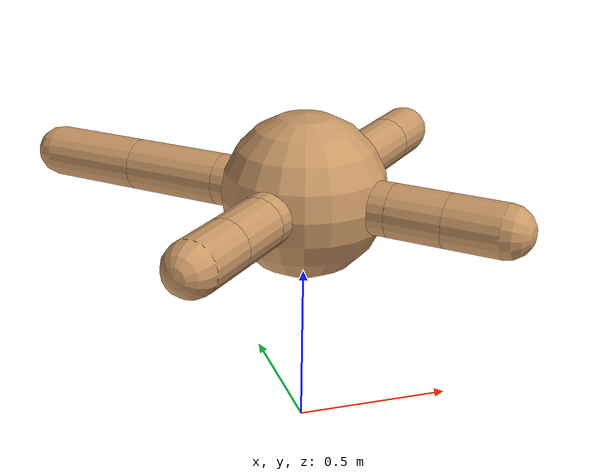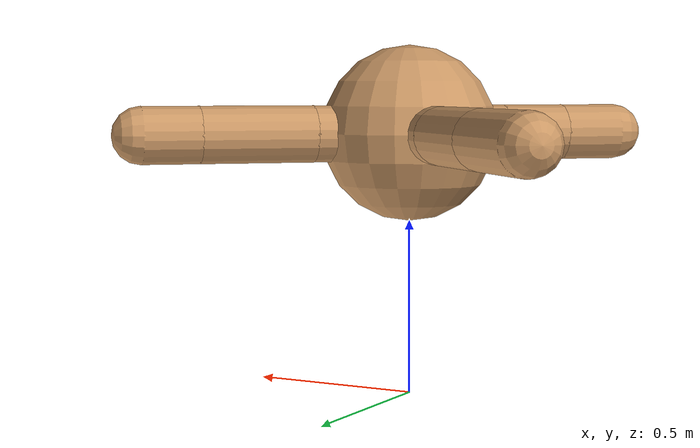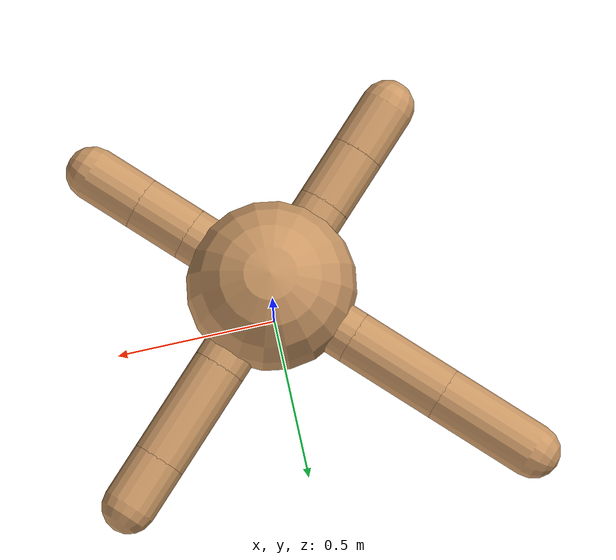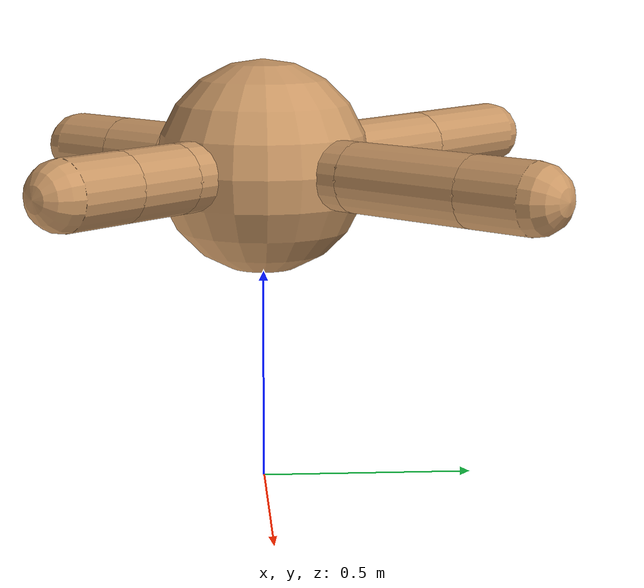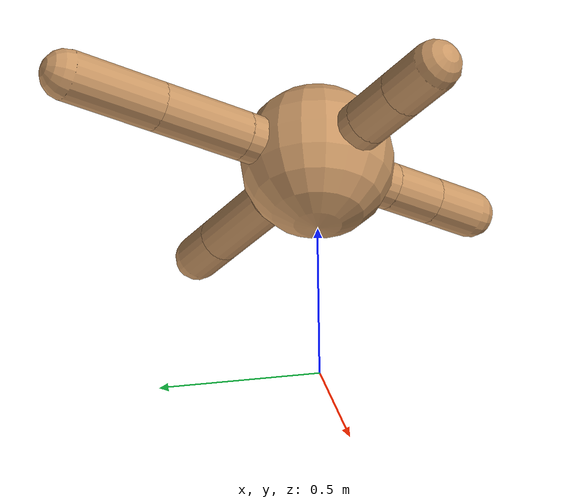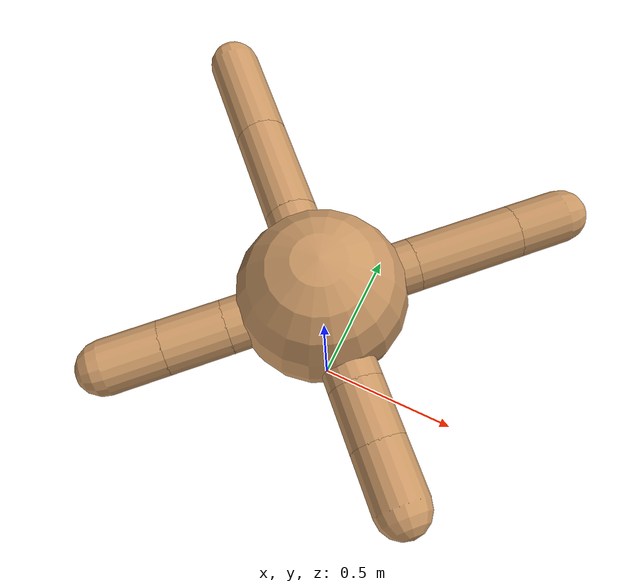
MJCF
<?xml version="1.0" ?>
<mujoco>
    <default>
        <joint armature="1" damping="1" limited="true"/>
        <geom condim="3" conaffinity="0" density="5.0" friction="1 0.5 0.5" margin="0.01" rgba="0.8 0.6 0.4 1"/>
    </default>
    <worldbody>
        <body name="Base" pos="0.0 0.0 0.75">
            <joint type="free" armature="0" damping="0" limited="false" margin="0.01" pos="0 0 0"/>
            <geom type="sphere" rgba="0.8 0.6 0.4 1" size="0.25"/>
            <camera name="track" mode="trackcom" pos="0 -3 0.3" xyaxes="1 0 0 0 0 1"/>
            <geom name="limb0" type="capsule" fromto="0 0 0 0.2 0.2 0.0" size="0.08"/>
            <body name="rod_0.1" pos="0.31325611619080707 0.31325611619080707 0.0">
                <geom type="capsule" fromto="-0.11325611619080703 -0.11325611619080703 -0.0 0.11325611619080703 0.11325611619080703 0.0" size="0.08" name="geom_0.1"/>
                <site pos="0 0 0" quat="0.9238795325112867 0.0 0.0 0.38268343236508984" name="site_0.1"/>
                <joint type="hinge" pos="-0.11325611619080703 -0.11325611619080703 -0.0" axis="0.5773502691896258 0.5773502691896258 0.5773502691896258" range="-30 30" name="joint_Base=rod_0.1"/>
                <body pos="-0.11325611619080703 -0.11325611619080703 -0.0" name="p0">
                    <site name="p0"/>
                </body>
                <body name="rod_1.2" pos="0.16963219310045333 0.16963219310045333 0.0">
                    <geom type="capsule" fromto="-0.0563760769096463 -0.0563760769096463 -0.0 0.0563760769096463 0.0563760769096463 0.0" size="0.08" name="geom_1.2"/>
                    <site pos="0 0 0" quat="0.9238795325112867 0.0 0.0 0.38268343236508984" name="site_1.2"/>
                    <joint type="hinge" pos="-0.0563760769096463 -0.0563760769096463 -0.0" axis="0.5773502691896258 0.5773502691896258 0.5773502691896258" range="30 70" name="joint_rod_0.1=rod_1.2"/>
                    <body pos="-0.0563760769096463 -0.0563760769096463 -0.0" name="p1">
                        <site name="p1"/>
                    </body>
                </body>
            </body>
            <geom name="limb1" type="capsule" fromto="0 0 0 -0.2 0.2 0.0" size="0.08"/>
            <body name="rod_3.4" pos="-0.3081193420505735 0.3081193420505735 0.0">
                <geom type="capsule" fromto="0.1081193420505735 -0.1081193420505735 -0.0 -0.1081193420505735 0.1081193420505735 0.0" size="0.08" name="geom_3.4"/>
                <site pos="0 0 0" quat="0.38268343236508984 0.0 -0.0 0.9238795325112867" name="site_3.4"/>
                <joint type="hinge" pos="0.1081193420505735 -0.1081193420505735 -0.0" axis="0.5773502691896258 0.5773502691896258 0.5773502691896258" range="-30 30" name="joint_Base=rod_3.4"/>
                <body pos="0.1081193420505735 -0.1081193420505735 -0.0" name="p3">
                    <site name="p3"/>
                </body>
                <body name="rod_4.5" pos="-0.21737076106769423 0.21737076106769423 0.0">
                    <geom type="capsule" fromto="0.10925141901712074 -0.10925141901712074 -0.0 -0.10925141901712074 0.10925141901712074 0.0" size="0.08" name="geom_4.5"/>
                    <site pos="0 0 0" quat="0.38268343236508984 0.0 -0.0 0.9238795325112867" name="site_4.5"/>
                    <joint type="hinge" pos="0.10925141901712074 -0.10925141901712074 -0.0" axis="0.5773502691896258 0.5773502691896258 0.5773502691896258" range="-70 -30" name="joint_rod_3.4=rod_4.5"/>
                    <body pos="0.10925141901712074 -0.10925141901712074 -0.0" name="p4">
                        <site name="p4"/>
                    </body>
                </body>
            </body>
            <geom name="limb2" type="capsule" fromto="0 0 0 -0.2 -0.2 0.0" size="0.08"/>
            <body name="rod_6.7" pos="-0.2639854243353701 -0.2639854243353701 0.0">
                <geom type="capsule" fromto="0.0639854243353701 0.0639854243353701 -0.0 -0.0639854243353701 -0.0639854243353701 0.0" size="0.08" name="geom_6.7"/>
                <site pos="0 0 0" quat="0.38268343236508984 0.0 -0.0 -0.9238795325112867" name="site_6.7"/>
                <joint type="hinge" pos="0.0639854243353701 0.0639854243353701 -0.0" axis="0.5773502691896258 0.5773502691896258 0.5773502691896258" range="-30 30" name="joint_Base=rod_6.7"/>
                <body pos="0.0639854243353701 0.0639854243353701 -0.0" name="p6">
                    <site name="p6"/>
                </body>
                <body name="rod_7.8" pos="-0.12263947505893733 -0.12263947505893733 0.0">
                    <geom type="capsule" fromto="0.05865405072356722 0.05865405072356722 -0.0 -0.05865405072356722 -0.05865405072356722 0.0" size="0.08" name="geom_7.8"/>
                    <site pos="0 0 0" quat="0.38268343236508984 0.0 -0.0 -0.9238795325112867" name="site_7.8"/>
                    <joint type="hinge" pos="0.05865405072356722 0.05865405072356722 -0.0" axis="0.5773502691896258 0.5773502691896258 0.5773502691896258" range="-70 -30" name="joint_rod_6.7=rod_7.8"/>
                    <body pos="0.05865405072356722 0.05865405072356722 -0.0" name="p7">
                        <site name="p7"/>
                    </body>
                </body>
            </body>
            <geom name="limb3" type="capsule" fromto="0 0 0 0.2 -0.2 0.0" size="0.08"/>
            <body name="rod_9.10" pos="0.25947106480666793 -0.25947106480666793 0.0">
                <geom type="capsule" fromto="-0.05947106480666792 0.05947106480666792 -0.0 0.05947106480666792 -0.05947106480666792 0.0" size="0.08" name="geom_9.10"/>
                <site pos="0 0 0" quat="0.9238795325112867 0.0 0.0 -0.3826834323650898" name="site_9.10"/>
                <joint type="hinge" pos="-0.05947106480666792 0.05947106480666792 -0.0" axis="0.5773502691896258 0.5773502691896258 0.5773502691896258" range="-30 30" name="joint_Base=rod_9.10"/>
                <body pos="-0.05947106480666792 0.05947106480666792 -0.0" name="p9">
                    <site name="p9"/>
                </body>
                <body name="rod_10.11" pos="0.11891885576500441 -0.11891885576500441 0.0">
                    <geom type="capsule" fromto="-0.059447790958336494 0.059447790958336494 -0.0 0.059447790958336494 -0.059447790958336494 0.0" size="0.08" name="geom_10.11"/>
                    <site pos="0 0 0" quat="0.9238795325112867 0.0 0.0 -0.38268343236508984" name="site_10.11"/>
                    <joint type="hinge" pos="-0.059447790958336494 0.059447790958336494 -0.0" axis="0.5773502691896258 0.5773502691896258 0.5773502691896258" range="30 70" name="joint_rod_9.10=rod_10.11"/>
                    <body pos="-0.059447790958336494 0.059447790958336494 -0.0" name="p10">
                        <site name="p10"/>
                    </body>
                </body>
            </body>
        </body>
    </worldbody>
    <actuator>
        <motor gear="150" ctrlrange="-1.0 1.0" ctrllimited="true" joint="joint_Base=rod_0.1"/>
        <motor gear="150" ctrlrange="-1.0 1.0" ctrllimited="true" joint="joint_rod_0.1=rod_1.2"/>
        <motor gear="150" ctrlrange="-1.0 1.0" ctrllimited="true" joint="joint_Base=rod_3.4"/>
        <motor gear="150" ctrlrange="-1.0 1.0" ctrllimited="true" joint="joint_rod_3.4=rod_4.5"/>
        <motor gear="150" ctrlrange="-1.0 1.0" ctrllimited="true" joint="joint_Base=rod_6.7"/>
        <motor gear="150" ctrlrange="-1.0 1.0" ctrllimited="true" joint="joint_rod_6.7=rod_7.8"/>
        <motor gear="150" ctrlrange="-1.0 1.0" ctrllimited="true" joint="joint_Base=rod_9.10"/>
        <motor gear="150" ctrlrange="-1.0 1.0" ctrllimited="true" joint="joint_rod_9.10=rod_10.11"/>
    </actuator>
    <sensor>
        <accelerometer site="site_0.1"/>
        <gyro site="site_0.1"/>
        <magnetometer site="site_0.1"/>
        <accelerometer site="site_1.2"/>
        <gyro site="site_1.2"/>
        <magnetometer site="site_1.2"/>
        <accelerometer site="site_3.4"/>
        <gyro site="site_3.4"/>
        <magnetometer site="site_3.4"/>
        <accelerometer site="site_4.5"/>
        <gyro site="site_4.5"/>
        <magnetometer site="site_4.5"/>
        <accelerometer site="site_6.7"/>
        <gyro site="site_6.7"/>
        <magnetometer site="site_6.7"/>
        <accelerometer site="site_7.8"/>
        <gyro site="site_7.8"/>
        <magnetometer site="site_7.8"/>
        <accelerometer site="site_9.10"/>
        <gyro site="site_9.10"/>
        <magnetometer site="site_9.10"/>
        <accelerometer site="site_10.11"/>
        <gyro site="site_10.11"/>
        <magnetometer site="site_10.11"/>
    </sensor>
    <contact>
        <pair geom1="geom_0.1" geom2="floor"/>
        <pair geom1="geom_1.2" geom2="floor"/>
        <pair geom1="geom_3.4" geom2="floor"/>
        <pair geom1="geom_4.5" geom2="floor"/>
        <pair geom1="geom_6.7" geom2="floor"/>
        <pair geom1="geom_7.8" geom2="floor"/>
        <pair geom1="geom_9.10" geom2="floor"/>
        <pair geom1="geom_10.11" geom2="floor"/>
    </contact>
</mujoco>
